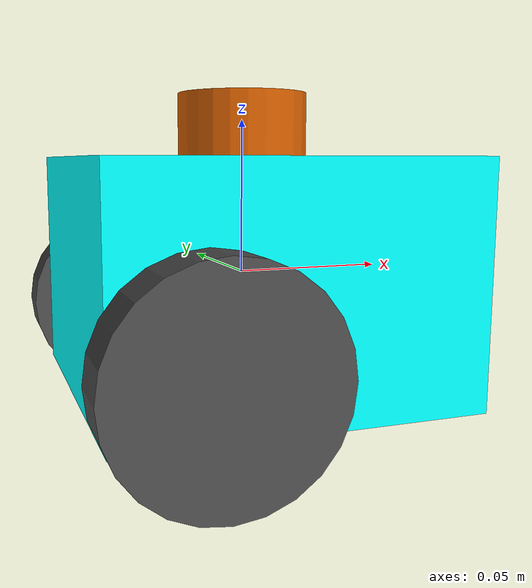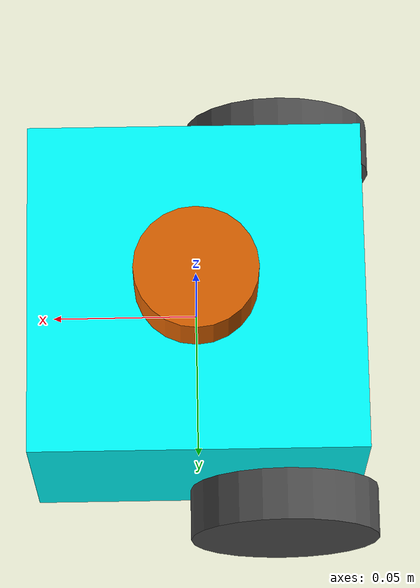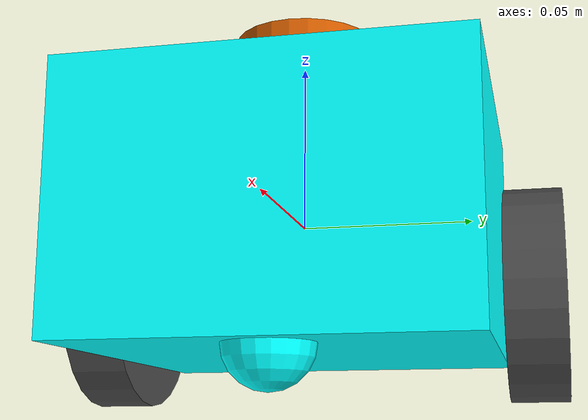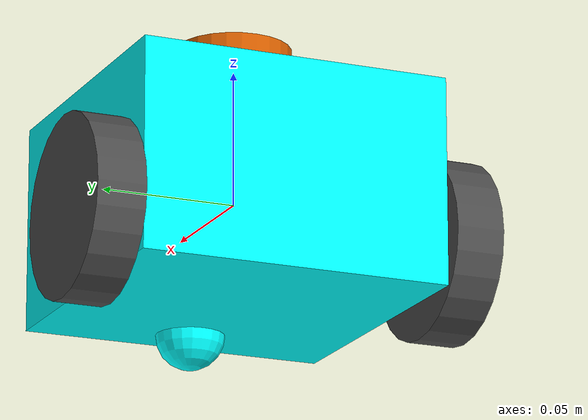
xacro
<?xml version="1.0"?>
<robot name="hermes_robot" xmlns:xacro="http://ros.org/wiki/xacro">

  <!-- Robot constants (must match hermes_sim.sdf.xacro) -->
  <xacro:property name="base_width"   value="0.1143"/>
  <xacro:property name="base_length"  value="0.1143"/>
  <xacro:property name="base_height"  value="0.0762"/>

  <xacro:property name="wheel_radius" value="0.03302"/>
  <xacro:property name="wheel_width"  value="0.01778"/>
  <xacro:property name="wheel_ygap"   value="0.01"/>
  <xacro:property name="wheel_zoff"   value="0.01778"/>
  <xacro:property name="wheel_xoff"   value="0.03"/>

  <xacro:property name="caster_xoff"  value="0.04"/>

  <!-- Inertia helpers -->
  <xacro:macro name="box_inertia" params="m w h d">
    <inertial>
      <origin xyz="0 0 0" rpy="${pi/2} 0 ${pi/2}"/>
      <mass value="${m}"/>
      <inertia
        ixx="${(m/12) * (h*h + d*d)}" ixy="0.0" ixz="0.0"
        iyy="${(m/12) * (w*w + d*d)}" iyz="0.0"
        izz="${(m/12) * (w*w + h*h)}"/>
    </inertial>
  </xacro:macro>

  <xacro:macro name="cylinder_inertia" params="m r h">
    <inertial>
      <origin xyz="0 0 0" rpy="${pi/2} 0 0"/>
      <mass value="${m}"/>
      <inertia
        ixx="${(m/12) * (3*r*r + h*h)}" ixy="0.0" ixz="0.0"
        iyy="${(m/12) * (3*r*r + h*h)}" iyz="0.0"
        izz="${(m/2) * (r*r)}"/>
    </inertial>
  </xacro:macro>

  <xacro:macro name="sphere_inertia" params="m r">
    <inertial>
      <mass value="${m}"/>
      <inertia
        ixx="${(2/5) * m * (r*r)}" ixy="0.0" ixz="0.0"
        iyy="${(2/5) * m * (r*r)}" iyz="0.0"
        izz="${(2/5) * m * (r*r)}"/>
    </inertial>
  </xacro:macro>

  <!-- ── Base link ─────────────────────────────────────────────────────────── -->
  <link name="base_link">
    <visual>
      <geometry>
        <box size="${base_length} ${base_width} ${base_height}"/>
      </geometry>
      <material name="cyan">
        <color rgba="0 1 1 1"/>
      </material>
    </visual>
    <collision>
      <geometry>
        <box size="${base_length} ${base_width} ${base_height}"/>
      </geometry>
    </collision>
    <xacro:box_inertia m="2.0" w="${base_width}" h="${base_height}" d="${base_length}"/>
  </link>

  <!-- ── Base footprint ───────────────────────────────────────────────────── -->
  <link name="base_footprint"/>

  <joint name="base_joint" type="fixed">
    <parent link="base_link"/>
    <child link="base_footprint"/>
    <origin xyz="0 0 ${-(wheel_radius + wheel_zoff)}" rpy="0 0 0"/>
  </joint>

  <!-- ── Drive wheels ─────────────────────────────────────────────────────── -->
  <!--
    The drive wheels are continuous (no hard travel limits).
    joint_state_publisher will publish 0.0 for these joints until a hardware
    driver populates /joint_states for them.
  -->
  <xacro:macro name="wheel" params="prefix x_reflect y_reflect">
    <link name="${prefix}_link">
      <visual>
        <origin xyz="0 0 0" rpy="${pi/2} 0 0"/>
        <geometry>
          <cylinder radius="${wheel_radius}" length="${wheel_width}"/>
        </geometry>
        <material name="dark_grey">
          <color rgba="0.3 0.3 0.3 1.0"/>
        </material>
      </visual>
      <collision>
        <origin xyz="0 0 0" rpy="${pi/2} 0 0"/>
        <geometry>
          <cylinder radius="${wheel_radius}" length="${wheel_width}"/>
        </geometry>
      </collision>
      <xacro:cylinder_inertia m="0.5" r="${wheel_radius}" h="${wheel_width}"/>
    </link>

    <joint name="${prefix}_joint" type="continuous">
      <parent link="base_link"/>
      <child link="${prefix}_link"/>
      <origin
        xyz="${x_reflect * wheel_xoff} ${y_reflect * (base_width/2 + wheel_ygap)} ${-wheel_zoff}"
        rpy="0 0 0"/>
      <axis xyz="0 1 0"/>
    </joint>
  </xacro:macro>

  <xacro:wheel prefix="drivewhl_l" x_reflect="-1" y_reflect="1"/>
  <xacro:wheel prefix="drivewhl_r" x_reflect="-1" y_reflect="-1"/>

  <!-- ── Front caster ─────────────────────────────────────────────────────── -->
  <link name="front_caster">
    <visual>
      <geometry>
        <sphere radius="${wheel_radius + wheel_zoff - (base_height/2)}"/>
      </geometry>
      <material name="cyan">
        <color rgba="0 1 1 1"/>
      </material>
    </visual>
    <collision>
      <geometry>
        <sphere radius="${wheel_radius + wheel_zoff - (base_height/2)}"/>
      </geometry>
    </collision>
    <xacro:sphere_inertia m="0.5" r="${wheel_radius + wheel_zoff - (base_height/2)}"/>
  </link>

  <joint name="caster_joint" type="fixed">
    <parent link="base_link"/>
    <child link="front_caster"/>
    <origin xyz="${caster_xoff} 0.0 ${-(base_height/2)}" rpy="0 0 0"/>
  </joint>

  <!-- ── Lidar ─────────────────────────────────────────────────────────────── -->
  <link name="lidar_link">
    <visual>
      <geometry>
        <cylinder radius="0.021" length="0.02032"/>
      </geometry>
    </visual>
    <collision>
      <geometry>
        <cylinder radius="0.021" length="0.02032"/>
      </geometry>
    </collision>
    <xacro:cylinder_inertia m="0.125" r="0.021" h="0.02032"/>
  </link>

  <joint name="lidar_joint" type="fixed">
    <parent link="base_link"/>
    <child link="lidar_link"/>
    <origin xyz="0.0 0.0 0.04826" rpy="0 0 0"/>
  </joint>

</robot>
